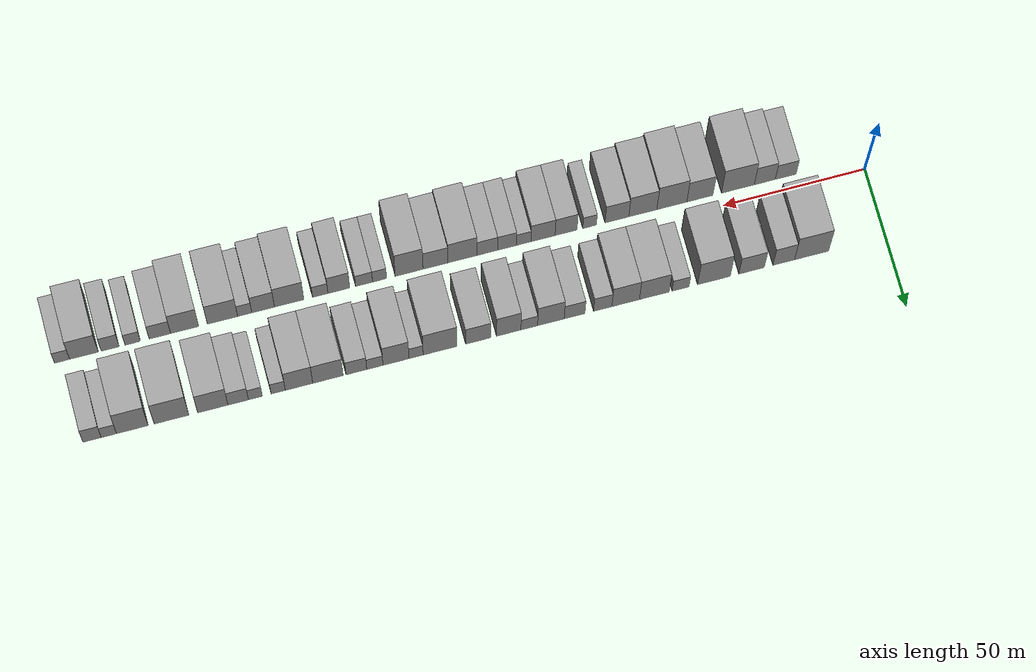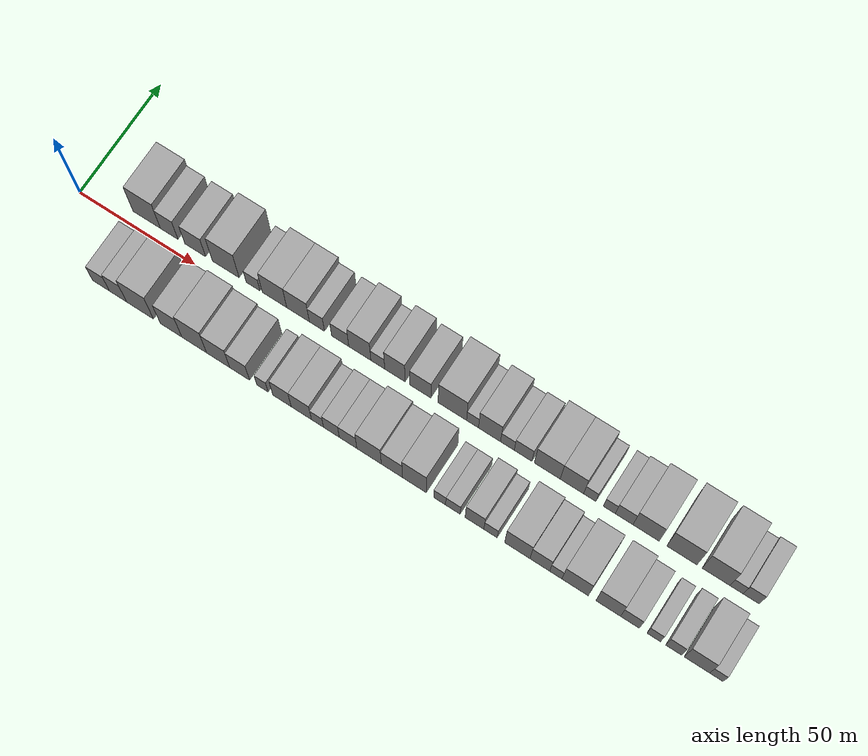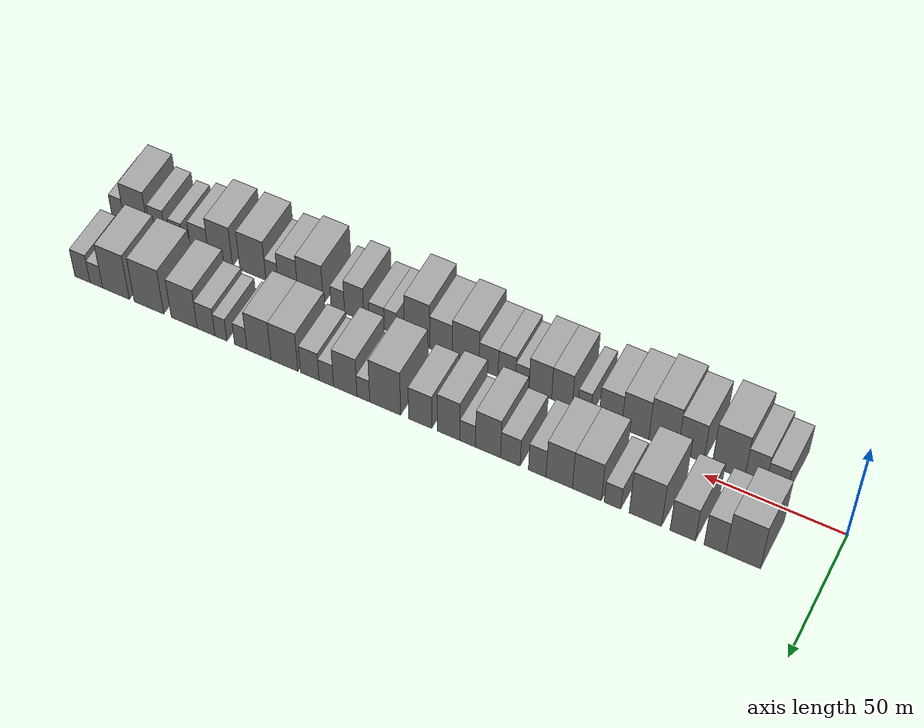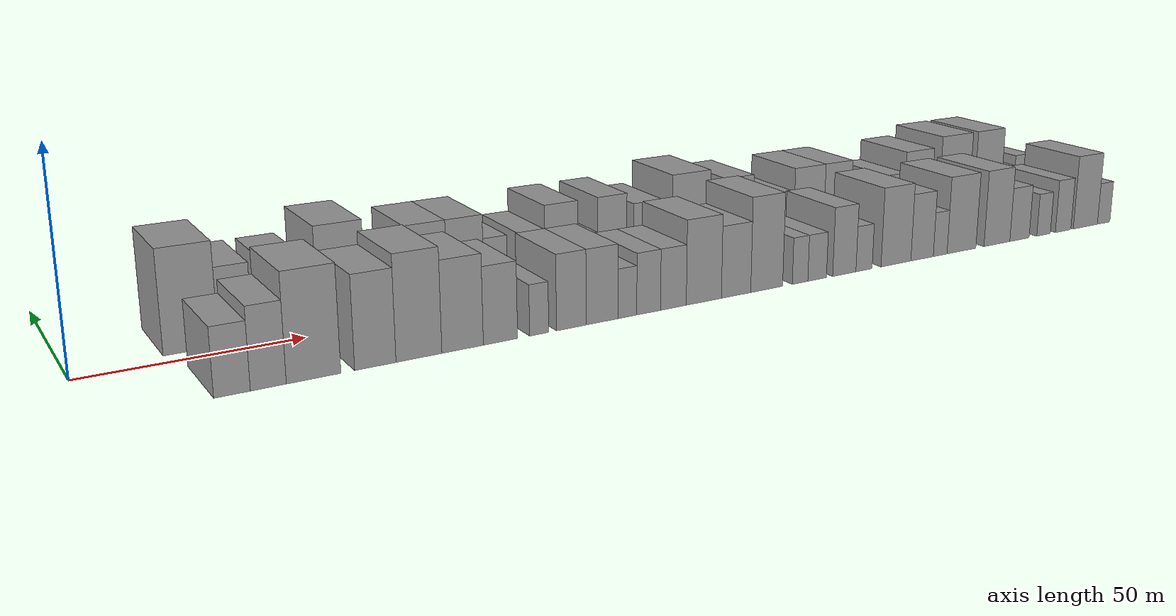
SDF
<sdf version="1.6">
 <world name="default">
  <scene>
   <sky><clouds><speed>12</speed></clouds></sky>
   <ambient>0.4 0.4 0.4 1</ambient>
   <background>0.7 0.7 0.7 1</background>
   <shadows>1</shadows>
  </scene>
  <gravity>0 0 -9.8066</gravity>
  <magnetic_field>6e-06 2.3e-05 -4.2e-05</magnetic_field>
  <physics default="0" name="default_physics" type="ode">
   <ode>
    <solver>
     <type>quick</type>
     <iters>10</iters>
     <sor>1.0</sor>
     <use_dynamic_moi_rescaling>0</use_dynamic_moi_rescaling>
    </solver>
    <constraints>
     <cfm>0</cfm>
     <erp>0.2</erp>
     <contact_max_correcting_vel>100</contact_max_correcting_vel>
     <contact_surface_layer>0.001</contact_surface_layer>
    </constraints>
   </ode>
   <max_step_size>0.004</max_step_size>
   <real_time_factor>1</real_time_factor>
   <real_time_update_rate>250</real_time_update_rate>
  </physics>
  <light name="sun" type="directional">
   <pose>0 0 10 0 0 0</pose>
   <diffuse>0.8 0.8 0.8 1</diffuse>
   <specular>0.2 0.2 0.2 1</specular>
   <attenuation>
    <range>1000</range>
    <constant>0.9</constant>
    <linear>0.01</linear>
    <quadratic>0.001</quadratic>
   </attenuation>
   <direction>-0.5 0.1 -0.9</direction>
  </light>
  <model name="building_1">
   <static>1</static>
   <pose>25.9845 14.5000 0 0.000000 0.000000 1.570796</pose>
   <link name="link">
    <pose>0 0 12.00 0 0 0</pose>
    <collision name="collision"><geometry><box><size>20.0000 11.9689 24.0000</size></box></geometry></collision>
    <visual name="visual">
     <cast_shadows>0</cast_shadows>
     <geometry><box><size>20.0000 11.9689 24.0000</size></box></geometry>
     <material>
      <script>
       <uri>model://grey_wall/materials/scripts</uri>
       <uri>model://grey_wall/materials/textures</uri>
       <name>vrc/grey_wall</name>
      </script>
     </material>
    </visual>
   </link>
  </model>
  <model name="building_2">
   <static>1</static>
   <pose>35.7692 14.5000 0 0.000000 0.000000 1.570796</pose>
   <link name="link">
    <pose>0 0 9.00 0 0 0</pose>
    <collision name="collision"><geometry><box><size>20.0000 7.6005 18.0000</size></box></geometry></collision>
    <visual name="visual">
     <cast_shadows>0</cast_shadows>
     <geometry><box><size>20.0000 7.6005 18.0000</size></box></geometry>
     <material>
      <script>
       <uri>model://grey_wall/materials/scripts</uri>
       <uri>model://grey_wall/materials/textures</uri>
       <name>vrc/grey_wall</name>
      </script>
     </material>
    </visual>
   </link>
  </model>
  <model name="building_3">
   <static>1</static>
   <pose>47.0475 14.5000 0 0.000000 0.000000 1.570796</pose>
   <link name="link">
    <pose>0 0 9.00 0 0 0</pose>
    <collision name="collision"><geometry><box><size>20.0000 8.9561 18.0000</size></box></geometry></collision>
    <visual name="visual">
     <cast_shadows>0</cast_shadows>
     <geometry><box><size>20.0000 8.9561 18.0000</size></box></geometry>
     <material>
      <script>
       <uri>model://grey_wall/materials/scripts</uri>
       <uri>model://grey_wall/materials/textures</uri>
       <name>vrc/grey_wall</name>
      </script>
     </material>
    </visual>
   </link>
  </model>
  <model name="building_4">
   <static>1</static>
   <pose>60.2503 14.5000 0 0.000000 0.000000 1.570796</pose>
   <link name="link">
    <pose>0 0 12.00 0 0 0</pose>
    <collision name="collision"><geometry><box><size>20.0000 11.4495 24.0000</size></box></geometry></collision>
    <visual name="visual">
     <cast_shadows>0</cast_shadows>
     <geometry><box><size>20.0000 11.4495 24.0000</size></box></geometry>
     <material>
      <script>
       <uri>model://grey_wall/materials/scripts</uri>
       <uri>model://grey_wall/materials/textures</uri>
       <name>vrc/grey_wall</name>
      </script>
     </material>
    </visual>
   </link>
  </model>
  <model name="building_5">
   <static>1</static>
   <pose>71.9448 14.5000 0 0.000000 0.000000 1.570796</pose>
   <link name="link">
    <pose>0 0 6.00 0 0 0</pose>
    <collision name="collision"><geometry><box><size>20.0000 5.9396 12.0000</size></box></geometry></collision>
    <visual name="visual">
     <cast_shadows>0</cast_shadows>
     <geometry><box><size>20.0000 5.9396 12.0000</size></box></geometry>
     <material>
      <script>
       <uri>model://grey_wall/materials/scripts</uri>
       <uri>model://grey_wall/materials/textures</uri>
       <name>vrc/grey_wall</name>
      </script>
     </material>
    </visual>
   </link>
  </model>
  <model name="building_6">
   <static>1</static>
   <pose>81.1203 14.5000 0 0.000000 0.000000 1.570796</pose>
   <link name="link">
    <pose>0 0 10.50 0 0 0</pose>
    <collision name="collision"><geometry><box><size>20.0000 10.4114 21.0000</size></box></geometry></collision>
    <visual name="visual">
     <cast_shadows>0</cast_shadows>
     <geometry><box><size>20.0000 10.4114 21.0000</size></box></geometry>
     <material>
      <script>
       <uri>model://grey_wall/materials/scripts</uri>
       <uri>model://grey_wall/materials/textures</uri>
       <name>vrc/grey_wall</name>
      </script>
     </material>
    </visual>
   </link>
  </model>
  <model name="building_7">
   <static>1</static>
   <pose>91.1336 14.5000 0 0.000000 0.000000 1.570796</pose>
   <link name="link">
    <pose>0 0 10.50 0 0 0</pose>
    <collision name="collision"><geometry><box><size>20.0000 9.6151 21.0000</size></box></geometry></collision>
    <visual name="visual">
     <cast_shadows>0</cast_shadows>
     <geometry><box><size>20.0000 9.6151 21.0000</size></box></geometry>
     <material>
      <script>
       <uri>model://grey_wall/materials/scripts</uri>
       <uri>model://grey_wall/materials/textures</uri>
       <name>vrc/grey_wall</name>
      </script>
     </material>
    </visual>
   </link>
  </model>
  <model name="building_8">
   <static>1</static>
   <pose>99.1295 14.5000 0 0.000000 0.000000 1.570796</pose>
   <link name="link">
    <pose>0 0 7.50 0 0 0</pose>
    <collision name="collision"><geometry><box><size>20.0000 6.3768 15.0000</size></box></geometry></collision>
    <visual name="visual">
     <cast_shadows>0</cast_shadows>
     <geometry><box><size>20.0000 6.3768 15.0000</size></box></geometry>
     <material>
      <script>
       <uri>model://grey_wall/materials/scripts</uri>
       <uri>model://grey_wall/materials/textures</uri>
       <name>vrc/grey_wall</name>
      </script>
     </material>
    </visual>
   </link>
  </model>
  <model name="building_9">
   <static>1</static>
   <pose>108.9387 14.5000 0 0.000000 0.000000 1.570796</pose>
   <link name="link">
    <pose>0 0 7.50 0 0 0</pose>
    <collision name="collision"><geometry><box><size>20.0000 7.2416 15.0000</size></box></geometry></collision>
    <visual name="visual">
     <cast_shadows>0</cast_shadows>
     <geometry><box><size>20.0000 7.2416 15.0000</size></box></geometry>
     <material>
      <script>
       <uri>model://grey_wall/materials/scripts</uri>
       <uri>model://grey_wall/materials/textures</uri>
       <name>vrc/grey_wall</name>
      </script>
     </material>
    </visual>
   </link>
  </model>
  <model name="building_10">
   <static>1</static>
   <pose>117.1873 14.5000 0 0.000000 0.000000 1.570796</pose>
   <link name="link">
    <pose>0 0 10.50 0 0 0</pose>
    <collision name="collision"><geometry><box><size>20.0000 9.2556 21.0000</size></box></geometry></collision>
    <visual name="visual">
     <cast_shadows>0</cast_shadows>
     <geometry><box><size>20.0000 9.2556 21.0000</size></box></geometry>
     <material>
      <script>
       <uri>model://grey_wall/materials/scripts</uri>
       <uri>model://grey_wall/materials/textures</uri>
       <name>vrc/grey_wall</name>
      </script>
     </material>
    </visual>
   </link>
  </model>
  <model name="building_11">
   <static>1</static>
   <pose>124.7152 14.5000 0 0.000000 0.000000 1.570796</pose>
   <link name="link">
    <pose>0 0 6.00 0 0 0</pose>
    <collision name="collision"><geometry><box><size>20.0000 5.8002 12.0000</size></box></geometry></collision>
    <visual name="visual">
     <cast_shadows>0</cast_shadows>
     <geometry><box><size>20.0000 5.8002 12.0000</size></box></geometry>
     <material>
      <script>
       <uri>model://grey_wall/materials/scripts</uri>
       <uri>model://grey_wall/materials/textures</uri>
       <name>vrc/grey_wall</name>
      </script>
     </material>
    </visual>
   </link>
  </model>
  <model name="building_12">
   <static>1</static>
   <pose>131.8481 14.5000 0 0.000000 0.000000 1.570796</pose>
   <link name="link">
    <pose>0 0 10.50 0 0 0</pose>
    <collision name="collision"><geometry><box><size>20.0000 8.4658 21.0000</size></box></geometry></collision>
    <visual name="visual">
     <cast_shadows>0</cast_shadows>
     <geometry><box><size>20.0000 8.4658 21.0000</size></box></geometry>
     <material>
      <script>
       <uri>model://grey_wall/materials/scripts</uri>
       <uri>model://grey_wall/materials/textures</uri>
       <name>vrc/grey_wall</name>
      </script>
     </material>
    </visual>
   </link>
  </model>
  <model name="building_13">
   <static>1</static>
   <pose>142.4373 14.5000 0 0.000000 0.000000 1.570796</pose>
   <link name="link">
    <pose>0 0 9.00 0 0 0</pose>
    <collision name="collision"><geometry><box><size>20.0000 8.7125 18.0000</size></box></geometry></collision>
    <visual name="visual">
     <cast_shadows>0</cast_shadows>
     <geometry><box><size>20.0000 8.7125 18.0000</size></box></geometry>
     <material>
      <script>
       <uri>model://grey_wall/materials/scripts</uri>
       <uri>model://grey_wall/materials/textures</uri>
       <name>vrc/grey_wall</name>
      </script>
     </material>
    </visual>
   </link>
  </model>
  <model name="building_14">
   <static>1</static>
   <pose>155.6550 14.5000 0 0.000000 0.000000 1.570796</pose>
   <link name="link">
    <pose>0 0 12.00 0 0 0</pose>
    <collision name="collision"><geometry><box><size>20.0000 11.7228 24.0000</size></box></geometry></collision>
    <visual name="visual">
     <cast_shadows>0</cast_shadows>
     <geometry><box><size>20.0000 11.7228 24.0000</size></box></geometry>
     <material>
      <script>
       <uri>model://grey_wall/materials/scripts</uri>
       <uri>model://grey_wall/materials/textures</uri>
       <name>vrc/grey_wall</name>
      </script>
     </material>
    </visual>
   </link>
  </model>
  <model name="building_15">
   <static>1</static>
   <pose>163.9676 14.5000 0 0.000000 0.000000 1.570796</pose>
   <link name="link">
    <pose>0 0 6.00 0 0 0</pose>
    <collision name="collision"><geometry><box><size>20.0000 4.9025 12.0000</size></box></geometry></collision>
    <visual name="visual">
     <cast_shadows>0</cast_shadows>
     <geometry><box><size>20.0000 4.9025 12.0000</size></box></geometry>
     <material>
      <script>
       <uri>model://grey_wall/materials/scripts</uri>
       <uri>model://grey_wall/materials/textures</uri>
       <name>vrc/grey_wall</name>
      </script>
     </material>
    </visual>
   </link>
  </model>
  <model name="building_16">
   <static>1</static>
   <pose>170.9178 14.5000 0 0.000000 0.000000 1.570796</pose>
   <link name="link">
    <pose>0 0 10.50 0 0 0</pose>
    <collision name="collision"><geometry><box><size>20.0000 8.9979 21.0000</size></box></geometry></collision>
    <visual name="visual">
     <cast_shadows>0</cast_shadows>
     <geometry><box><size>20.0000 8.9979 21.0000</size></box></geometry>
     <material>
      <script>
       <uri>model://grey_wall/materials/scripts</uri>
       <uri>model://grey_wall/materials/textures</uri>
       <name>vrc/grey_wall</name>
      </script>
     </material>
    </visual>
   </link>
  </model>
  <model name="building_17">
   <static>1</static>
   <pose>178.2170 14.5000 0 0.000000 0.000000 1.570796</pose>
   <link name="link">
    <pose>0 0 6.00 0 0 0</pose>
    <collision name="collision"><geometry><box><size>20.0000 5.6005 12.0000</size></box></geometry></collision>
    <visual name="visual">
     <cast_shadows>0</cast_shadows>
     <geometry><box><size>20.0000 5.6005 12.0000</size></box></geometry>
     <material>
      <script>
       <uri>model://grey_wall/materials/scripts</uri>
       <uri>model://grey_wall/materials/textures</uri>
       <name>vrc/grey_wall</name>
      </script>
     </material>
    </visual>
   </link>
  </model>
  <model name="building_18">
   <static>1</static>
   <pose>184.6122 14.5000 0 0.000000 0.000000 1.570796</pose>
   <link name="link">
    <pose>0 0 7.50 0 0 0</pose>
    <collision name="collision"><geometry><box><size>20.0000 7.1898 15.0000</size></box></geometry></collision>
    <visual name="visual">
     <cast_shadows>0</cast_shadows>
     <geometry><box><size>20.0000 7.1898 15.0000</size></box></geometry>
     <material>
      <script>
       <uri>model://grey_wall/materials/scripts</uri>
       <uri>model://grey_wall/materials/textures</uri>
       <name>vrc/grey_wall</name>
      </script>
     </material>
    </visual>
   </link>
  </model>
  <model name="building_19">
   <static>1</static>
   <pose>194.4474 14.5000 0 0.000000 0.000000 1.570796</pose>
   <link name="link">
    <pose>0 0 10.50 0 0 0</pose>
    <collision name="collision"><geometry><box><size>20.0000 10.4807 21.0000</size></box></geometry></collision>
    <visual name="visual">
     <cast_shadows>0</cast_shadows>
     <geometry><box><size>20.0000 10.4807 21.0000</size></box></geometry>
     <material>
      <script>
       <uri>model://grey_wall/materials/scripts</uri>
       <uri>model://grey_wall/materials/textures</uri>
       <name>vrc/grey_wall</name>
      </script>
     </material>
    </visual>
   </link>
  </model>
  <model name="building_20">
   <static>1</static>
   <pose>204.4156 14.5000 0 0.000000 0.000000 1.570796</pose>
   <link name="link">
    <pose>0 0 10.50 0 0 0</pose>
    <collision name="collision"><geometry><box><size>20.0000 9.4557 21.0000</size></box></geometry></collision>
    <visual name="visual">
     <cast_shadows>0</cast_shadows>
     <geometry><box><size>20.0000 9.4557 21.0000</size></box></geometry>
     <material>
      <script>
       <uri>model://grey_wall/materials/scripts</uri>
       <uri>model://grey_wall/materials/textures</uri>
       <name>vrc/grey_wall</name>
      </script>
     </material>
    </visual>
   </link>
  </model>
  <model name="building_21">
   <static>1</static>
   <pose>211.5923 14.5000 0 0.000000 0.000000 1.570796</pose>
   <link name="link">
    <pose>0 0 6.00 0 0 0</pose>
    <collision name="collision"><geometry><box><size>20.0000 4.8976 12.0000</size></box></geometry></collision>
    <visual name="visual">
     <cast_shadows>0</cast_shadows>
     <geometry><box><size>20.0000 4.8976 12.0000</size></box></geometry>
     <material>
      <script>
       <uri>model://grey_wall/materials/scripts</uri>
       <uri>model://grey_wall/materials/textures</uri>
       <name>vrc/grey_wall</name>
      </script>
     </material>
    </visual>
   </link>
  </model>
  <model name="building_22">
   <static>1</static>
   <pose>219.4458 14.5000 0 0.000000 0.000000 1.570796</pose>
   <link name="link">
    <pose>0 0 6.00 0 0 0</pose>
    <collision name="collision"><geometry><box><size>20.0000 4.8096 12.0000</size></box></geometry></collision>
    <visual name="visual">
     <cast_shadows>0</cast_shadows>
     <geometry><box><size>20.0000 4.8096 12.0000</size></box></geometry>
     <material>
      <script>
       <uri>model://grey_wall/materials/scripts</uri>
       <uri>model://grey_wall/materials/textures</uri>
       <name>vrc/grey_wall</name>
      </script>
     </material>
    </visual>
   </link>
  </model>
  <model name="building_23">
   <static>1</static>
   <pose>225.3727 14.5000 0 0.000000 0.000000 1.570796</pose>
   <link name="link">
    <pose>0 0 7.50 0 0 0</pose>
    <collision name="collision"><geometry><box><size>20.0000 7.0442 15.0000</size></box></geometry></collision>
    <visual name="visual">
     <cast_shadows>0</cast_shadows>
     <geometry><box><size>20.0000 7.0442 15.0000</size></box></geometry>
     <material>
      <script>
       <uri>model://grey_wall/materials/scripts</uri>
       <uri>model://grey_wall/materials/textures</uri>
       <name>vrc/grey_wall</name>
      </script>
     </material>
    </visual>
   </link>
  </model>
  <model name="building_24">
   <static>1</static>
   <pose>234.1140 14.5000 0 0.000000 0.000000 1.570796</pose>
   <link name="link">
    <pose>0 0 10.50 0 0 0</pose>
    <collision name="collision"><geometry><box><size>20.0000 10.4384 21.0000</size></box></geometry></collision>
    <visual name="visual">
     <cast_shadows>0</cast_shadows>
     <geometry><box><size>20.0000 10.4384 21.0000</size></box></geometry>
     <material>
      <script>
       <uri>model://grey_wall/materials/scripts</uri>
       <uri>model://grey_wall/materials/textures</uri>
       <name>vrc/grey_wall</name>
      </script>
     </material>
    </visual>
   </link>
  </model>
  <model name="building_25">
   <static>1</static>
   <pose>248.3089 14.5000 0 0.000000 0.000000 1.570796</pose>
   <link name="link">
    <pose>0 0 12.00 0 0 0</pose>
    <collision name="collision"><geometry><box><size>20.0000 11.9514 24.0000</size></box></geometry></collision>
    <visual name="visual">
     <cast_shadows>0</cast_shadows>
     <geometry><box><size>20.0000 11.9514 24.0000</size></box></geometry>
     <material>
      <script>
       <uri>model://grey_wall/materials/scripts</uri>
       <uri>model://grey_wall/materials/textures</uri>
       <name>vrc/grey_wall</name>
      </script>
     </material>
    </visual>
   </link>
  </model>
  <model name="building_26">
   <static>1</static>
   <pose>261.7232 14.5000 0 0.000000 0.000000 1.570796</pose>
   <link name="link">
    <pose>0 0 12.00 0 0 0</pose>
    <collision name="collision"><geometry><box><size>20.0000 10.8771 24.0000</size></box></geometry></collision>
    <visual name="visual">
     <cast_shadows>0</cast_shadows>
     <geometry><box><size>20.0000 10.8771 24.0000</size></box></geometry>
     <material>
      <script>
       <uri>model://grey_wall/materials/scripts</uri>
       <uri>model://grey_wall/materials/textures</uri>
       <name>vrc/grey_wall</name>
      </script>
     </material>
    </visual>
   </link>
  </model>
  <model name="building_27">
   <static>1</static>
   <pose>269.7710 14.5000 0 0.000000 0.000000 1.570796</pose>
   <link name="link">
    <pose>0 0 6.00 0 0 0</pose>
    <collision name="collision"><geometry><box><size>20.0000 5.2185 12.0000</size></box></geometry></collision>
    <visual name="visual">
     <cast_shadows>0</cast_shadows>
     <geometry><box><size>20.0000 5.2185 12.0000</size></box></geometry>
     <material>
      <script>
       <uri>model://grey_wall/materials/scripts</uri>
       <uri>model://grey_wall/materials/textures</uri>
       <name>vrc/grey_wall</name>
      </script>
     </material>
    </visual>
   </link>
  </model>
  <model name="building_28">
   <static>1</static>
   <pose>275.4956 14.5000 0 0.000000 0.000000 1.570796</pose>
   <link name="link">
    <pose>0 0 7.50 0 0 0</pose>
    <collision name="collision"><geometry><box><size>20.0000 6.2307 15.0000</size></box></geometry></collision>
    <visual name="visual">
     <cast_shadows>0</cast_shadows>
     <geometry><box><size>20.0000 6.2307 15.0000</size></box></geometry>
     <material>
      <script>
       <uri>model://grey_wall/materials/scripts</uri>
       <uri>model://grey_wall/materials/textures</uri>
       <name>vrc/grey_wall</name>
      </script>
     </material>
    </visual>
   </link>
  </model>
  <model name="building_29">
   <static>1</static>
   <pose>26.6899 -14.5000 0 0.000000 0.000000 1.570796</pose>
   <link name="link">
    <pose>0 0 7.50 0 0 0</pose>
    <collision name="collision"><geometry><box><size>20.0000 7.3798 15.0000</size></box></geometry></collision>
    <visual name="visual">
     <cast_shadows>0</cast_shadows>
     <geometry><box><size>20.0000 7.3798 15.0000</size></box></geometry>
     <material>
      <script>
       <uri>model://grey_wall/materials/scripts</uri>
       <uri>model://grey_wall/materials/textures</uri>
       <name>vrc/grey_wall</name>
      </script>
     </material>
    </visual>
   </link>
  </model>
  <model name="building_30">
   <static>1</static>
   <pose>34.0803 -14.5000 0 0.000000 0.000000 1.570796</pose>
   <link name="link">
    <pose>0 0 9.00 0 0 0</pose>
    <collision name="collision"><geometry><box><size>20.0000 7.4009 18.0000</size></box></geometry></collision>
    <visual name="visual">
     <cast_shadows>0</cast_shadows>
     <geometry><box><size>20.0000 7.4009 18.0000</size></box></geometry>
     <material>
      <script>
       <uri>model://grey_wall/materials/scripts</uri>
       <uri>model://grey_wall/materials/textures</uri>
       <name>vrc/grey_wall</name>
      </script>
     </material>
    </visual>
   </link>
  </model>
  <model name="building_31">
   <static>1</static>
   <pose>43.5762 -14.5000 0 0.000000 0.000000 1.570796</pose>
   <link name="link">
    <pose>0 0 12.00 0 0 0</pose>
    <collision name="collision"><geometry><box><size>20.0000 11.5909 24.0000</size></box></geometry></collision>
    <visual name="visual">
     <cast_shadows>0</cast_shadows>
     <geometry><box><size>20.0000 11.5909 24.0000</size></box></geometry>
     <material>
      <script>
       <uri>model://grey_wall/materials/scripts</uri>
       <uri>model://grey_wall/materials/textures</uri>
       <name>vrc/grey_wall</name>
      </script>
     </material>
    </visual>
   </link>
  </model>
  <model name="building_32">
   <static>1</static>
   <pose>56.9744 -14.5000 0 0.000000 0.000000 1.570796</pose>
   <link name="link">
    <pose>0 0 10.50 0 0 0</pose>
    <collision name="collision"><geometry><box><size>20.0000 9.2055 21.0000</size></box></geometry></collision>
    <visual name="visual">
     <cast_shadows>0</cast_shadows>
     <geometry><box><size>20.0000 9.2055 21.0000</size></box></geometry>
     <material>
      <script>
       <uri>model://grey_wall/materials/scripts</uri>
       <uri>model://grey_wall/materials/textures</uri>
       <name>vrc/grey_wall</name>
      </script>
     </material>
    </visual>
   </link>
  </model>
  <model name="building_33">
   <static>1</static>
   <pose>66.8520 -14.5000 0 0.000000 0.000000 1.570796</pose>
   <link name="link">
    <pose>0 0 12.00 0 0 0</pose>
    <collision name="collision"><geometry><box><size>20.0000 10.5497 24.0000</size></box></geometry></collision>
    <visual name="visual">
     <cast_shadows>0</cast_shadows>
     <geometry><box><size>20.0000 10.5497 24.0000</size></box></geometry>
     <material>
      <script>
       <uri>model://grey_wall/materials/scripts</uri>
       <uri>model://grey_wall/materials/textures</uri>
       <name>vrc/grey_wall</name>
      </script>
     </material>
    </visual>
   </link>
  </model>
  <model name="building_34">
   <static>1</static>
   <pose>77.0535 -14.5000 0 0.000000 0.000000 1.570796</pose>
   <link name="link">
    <pose>0 0 10.50 0 0 0</pose>
    <collision name="collision"><geometry><box><size>20.0000 9.8534 21.0000</size></box></geometry></collision>
    <visual name="visual">
     <cast_shadows>0</cast_shadows>
     <geometry><box><size>20.0000 9.8534 21.0000</size></box></geometry>
     <material>
      <script>
       <uri>model://grey_wall/materials/scripts</uri>
       <uri>model://grey_wall/materials/textures</uri>
       <name>vrc/grey_wall</name>
      </script>
     </material>
    </visual>
   </link>
  </model>
  <model name="building_35">
   <static>1</static>
   <pose>86.1651 -14.5000 0 0.000000 0.000000 1.570796</pose>
   <link name="link">
    <pose>0 0 9.00 0 0 0</pose>
    <collision name="collision"><geometry><box><size>20.0000 8.3698 18.0000</size></box></geometry></collision>
    <visual name="visual">
     <cast_shadows>0</cast_shadows>
     <geometry><box><size>20.0000 8.3698 18.0000</size></box></geometry>
     <material>
      <script>
       <uri>model://grey_wall/materials/scripts</uri>
       <uri>model://grey_wall/materials/textures</uri>
       <name>vrc/grey_wall</name>
      </script>
     </material>
    </visual>
   </link>
  </model>
  <model name="building_36">
   <static>1</static>
   <pose>95.7519 -14.5000 0 0.000000 0.000000 1.570796</pose>
   <link name="link">
    <pose>0 0 6.00 0 0 0</pose>
    <collision name="collision"><geometry><box><size>20.0000 4.8037 12.0000</size></box></geometry></collision>
    <visual name="visual">
     <cast_shadows>0</cast_shadows>
     <geometry><box><size>20.0000 4.8037 12.0000</size></box></geometry>
     <material>
      <script>
       <uri>model://grey_wall/materials/scripts</uri>
       <uri>model://grey_wall/materials/textures</uri>
       <name>vrc/grey_wall</name>
      </script>
     </material>
    </visual>
   </link>
  </model>
  <model name="building_37">
   <static>1</static>
   <pose>104.0038 -14.5000 0 0.000000 0.000000 1.570796</pose>
   <link name="link">
    <pose>0 0 9.00 0 0 0</pose>
    <collision name="collision"><geometry><box><size>20.0000 7.7002 18.0000</size></box></geometry></collision>
    <visual name="visual">
     <cast_shadows>0</cast_shadows>
     <geometry><box><size>20.0000 7.7002 18.0000</size></box></geometry>
     <material>
      <script>
       <uri>model://grey_wall/materials/scripts</uri>
       <uri>model://grey_wall/materials/textures</uri>
       <name>vrc/grey_wall</name>
      </script>
     </material>
    </visual>
   </link>
  </model>
  <model name="building_38">
   <static>1</static>
   <pose>112.0795 -14.5000 0 0.000000 0.000000 1.570796</pose>
   <link name="link">
    <pose>0 0 9.00 0 0 0</pose>
    <collision name="collision"><geometry><box><size>20.0000 8.4512 18.0000</size></box></geometry></collision>
    <visual name="visual">
     <cast_shadows>0</cast_shadows>
     <geometry><box><size>20.0000 8.4512 18.0000</size></box></geometry>
     <material>
      <script>
       <uri>model://grey_wall/materials/scripts</uri>
       <uri>model://grey_wall/materials/textures</uri>
       <name>vrc/grey_wall</name>
      </script>
     </material>
    </visual>
   </link>
  </model>
  <model name="building_39">
   <static>1</static>
   <pose>118.8293 -14.5000 0 0.000000 0.000000 1.570796</pose>
   <link name="link">
    <pose>0 0 6.00 0 0 0</pose>
    <collision name="collision"><geometry><box><size>20.0000 5.0483 12.0000</size></box></geometry></collision>
    <visual name="visual">
     <cast_shadows>0</cast_shadows>
     <geometry><box><size>20.0000 5.0483 12.0000</size></box></geometry>
     <material>
      <script>
       <uri>model://grey_wall/materials/scripts</uri>
       <uri>model://grey_wall/materials/textures</uri>
       <name>vrc/grey_wall</name>
      </script>
     </material>
    </visual>
   </link>
  </model>
  <model name="building_40">
   <static>1</static>
   <pose>124.6344 -14.5000 0 0.000000 0.000000 1.570796</pose>
   <link name="link">
    <pose>0 0 7.50 0 0 0</pose>
    <collision name="collision"><geometry><box><size>20.0000 6.5619 15.0000</size></box></geometry></collision>
    <visual name="visual">
     <cast_shadows>0</cast_shadows>
     <geometry><box><size>20.0000 6.5619 15.0000</size></box></geometry>
     <material>
      <script>
       <uri>model://grey_wall/materials/scripts</uri>
       <uri>model://grey_wall/materials/textures</uri>
       <name>vrc/grey_wall</name>
      </script>
     </material>
    </visual>
   </link>
  </model>
  <model name="building_41">
   <static>1</static>
   <pose>131.5280 -14.5000 0 0.000000 0.000000 1.570796</pose>
   <link name="link">
    <pose>0 0 7.50 0 0 0</pose>
    <collision name="collision"><geometry><box><size>20.0000 7.2253 15.0000</size></box></geometry></collision>
    <visual name="visual">
     <cast_shadows>0</cast_shadows>
     <geometry><box><size>20.0000 7.2253 15.0000</size></box></geometry>
     <material>
      <script>
       <uri>model://grey_wall/materials/scripts</uri>
       <uri>model://grey_wall/materials/textures</uri>
       <name>vrc/grey_wall</name>
      </script>
     </material>
    </visual>
   </link>
  </model>
  <model name="building_42">
   <static>1</static>
   <pose>140.2007 -14.5000 0 0.000000 0.000000 1.570796</pose>
   <link name="link">
    <pose>0 0 10.50 0 0 0</pose>
    <collision name="collision"><geometry><box><size>20.0000 10.1203 21.0000</size></box></geometry></collision>
    <visual name="visual">
     <cast_shadows>0</cast_shadows>
     <geometry><box><size>20.0000 10.1203 21.0000</size></box></geometry>
     <material>
      <script>
       <uri>model://grey_wall/materials/scripts</uri>
       <uri>model://grey_wall/materials/textures</uri>
       <name>vrc/grey_wall</name>
      </script>
     </material>
    </visual>
   </link>
  </model>
  <model name="building_43">
   <static>1</static>
   <pose>149.6101 -14.5000 0 0.000000 0.000000 1.570796</pose>
   <link name="link">
    <pose>0 0 9.00 0 0 0</pose>
    <collision name="collision"><geometry><box><size>20.0000 8.6985 18.0000</size></box></geometry></collision>
    <visual name="visual">
     <cast_shadows>0</cast_shadows>
     <geometry><box><size>20.0000 8.6985 18.0000</size></box></geometry>
     <material>
      <script>
       <uri>model://grey_wall/materials/scripts</uri>
       <uri>model://grey_wall/materials/textures</uri>
       <name>vrc/grey_wall</name>
      </script>
     </material>
    </visual>
   </link>
  </model>
  <model name="building_44">
   <static>1</static>
   <pose>158.8207 -14.5000 0 0.000000 0.000000 1.570796</pose>
   <link name="link">
    <pose>0 0 12.00 0 0 0</pose>
    <collision name="collision"><geometry><box><size>20.0000 9.7227 24.0000</size></box></geometry></collision>
    <visual name="visual">
     <cast_shadows>0</cast_shadows>
     <geometry><box><size>20.0000 9.7227 24.0000</size></box></geometry>
     <material>
      <script>
       <uri>model://grey_wall/materials/scripts</uri>
       <uri>model://grey_wall/materials/textures</uri>
       <name>vrc/grey_wall</name>
      </script>
     </material>
    </visual>
   </link>
  </model>
  <model name="building_45">
   <static>1</static>
   <pose>169.1161 -14.5000 0 0.000000 0.000000 1.570796</pose>
   <link name="link">
    <pose>0 0 6.00 0 0 0</pose>
    <collision name="collision"><geometry><box><size>20.0000 4.8681 12.0000</size></box></geometry></collision>
    <visual name="visual">
     <cast_shadows>0</cast_shadows>
     <geometry><box><size>20.0000 4.8681 12.0000</size></box></geometry>
     <material>
      <script>
       <uri>model://grey_wall/materials/scripts</uri>
       <uri>model://grey_wall/materials/textures</uri>
       <name>vrc/grey_wall</name>
      </script>
     </material>
    </visual>
   </link>
  </model>
  <model name="building_46">
   <static>1</static>
   <pose>174.5121 -14.5000 0 0.000000 0.000000 1.570796</pose>
   <link name="link">
    <pose>0 0 6.00 0 0 0</pose>
    <collision name="collision"><geometry><box><size>20.0000 5.9239 12.0000</size></box></geometry></collision>
    <visual name="visual">
     <cast_shadows>0</cast_shadows>
     <geometry><box><size>20.0000 5.9239 12.0000</size></box></geometry>
     <material>
      <script>
       <uri>model://grey_wall/materials/scripts</uri>
       <uri>model://grey_wall/materials/textures</uri>
       <name>vrc/grey_wall</name>
      </script>
     </material>
    </visual>
   </link>
  </model>
  <model name="building_47">
   <static>1</static>
   <pose>183.2656 -14.5000 0 0.000000 0.000000 1.570796</pose>
   <link name="link">
    <pose>0 0 9.00 0 0 0</pose>
    <collision name="collision"><geometry><box><size>20.0000 7.5832 18.0000</size></box></geometry></collision>
    <visual name="visual">
     <cast_shadows>0</cast_shadows>
     <geometry><box><size>20.0000 7.5832 18.0000</size></box></geometry>
     <material>
      <script>
       <uri>model://grey_wall/materials/scripts</uri>
       <uri>model://grey_wall/materials/textures</uri>
       <name>vrc/grey_wall</name>
      </script>
     </material>
    </visual>
   </link>
  </model>
  <model name="building_48">
   <static>1</static>
   <pose>189.7431 -14.5000 0 0.000000 0.000000 1.570796</pose>
   <link name="link">
    <pose>0 0 6.00 0 0 0</pose>
    <collision name="collision"><geometry><box><size>20.0000 5.3719 12.0000</size></box></geometry></collision>
    <visual name="visual">
     <cast_shadows>0</cast_shadows>
     <geometry><box><size>20.0000 5.3719 12.0000</size></box></geometry>
     <material>
      <script>
       <uri>model://grey_wall/materials/scripts</uri>
       <uri>model://grey_wall/materials/textures</uri>
       <name>vrc/grey_wall</name>
      </script>
     </material>
    </visual>
   </link>
  </model>
  <model name="building_49">
   <static>1</static>
   <pose>200.5272 -14.5000 0 0.000000 0.000000 1.570796</pose>
   <link name="link">
    <pose>0 0 10.50 0 0 0</pose>
    <collision name="collision"><geometry><box><size>20.0000 10.1963 21.0000</size></box></geometry></collision>
    <visual name="visual">
     <cast_shadows>0</cast_shadows>
     <geometry><box><size>20.0000 10.1963 21.0000</size></box></geometry>
     <material>
      <script>
       <uri>model://grey_wall/materials/scripts</uri>
       <uri>model://grey_wall/materials/textures</uri>
       <name>vrc/grey_wall</name>
      </script>
     </material>
    </visual>
   </link>
  </model>
  <model name="building_50">
   <static>1</static>
   <pose>209.5545 -14.5000 0 0.000000 0.000000 1.570796</pose>
   <link name="link">
    <pose>0 0 9.00 0 0 0</pose>
    <collision name="collision"><geometry><box><size>20.0000 7.8584 18.0000</size></box></geometry></collision>
    <visual name="visual">
     <cast_shadows>0</cast_shadows>
     <geometry><box><size>20.0000 7.8584 18.0000</size></box></geometry>
     <material>
      <script>
       <uri>model://grey_wall/materials/scripts</uri>
       <uri>model://grey_wall/materials/textures</uri>
       <name>vrc/grey_wall</name>
      </script>
     </material>
    </visual>
   </link>
  </model>
  <model name="building_51">
   <static>1</static>
   <pose>215.9348 -14.5000 0 0.000000 0.000000 1.570796</pose>
   <link name="link">
    <pose>0 0 6.00 0 0 0</pose>
    <collision name="collision"><geometry><box><size>20.0000 4.9022 12.0000</size></box></geometry></collision>
    <visual name="visual">
     <cast_shadows>0</cast_shadows>
     <geometry><box><size>20.0000 4.9022 12.0000</size></box></geometry>
     <material>
      <script>
       <uri>model://grey_wall/materials/scripts</uri>
       <uri>model://grey_wall/materials/textures</uri>
       <name>vrc/grey_wall</name>
      </script>
     </material>
    </visual>
   </link>
  </model>
  <model name="building_52">
   <static>1</static>
   <pose>223.6233 -14.5000 0 0.000000 0.000000 1.570796</pose>
   <link name="link">
    <pose>0 0 10.50 0 0 0</pose>
    <collision name="collision"><geometry><box><size>20.0000 10.4747 21.0000</size></box></geometry></collision>
    <visual name="visual">
     <cast_shadows>0</cast_shadows>
     <geometry><box><size>20.0000 10.4747 21.0000</size></box></geometry>
     <material>
      <script>
       <uri>model://grey_wall/materials/scripts</uri>
       <uri>model://grey_wall/materials/textures</uri>
       <name>vrc/grey_wall</name>
      </script>
     </material>
    </visual>
   </link>
  </model>
  <model name="building_53">
   <static>1</static>
   <pose>236.7152 -14.5000 0 0.000000 0.000000 1.570796</pose>
   <link name="link">
    <pose>0 0 10.50 0 0 0</pose>
    <collision name="collision"><geometry><box><size>20.0000 9.7091 21.0000</size></box></geometry></collision>
    <visual name="visual">
     <cast_shadows>0</cast_shadows>
     <geometry><box><size>20.0000 9.7091 21.0000</size></box></geometry>
     <material>
      <script>
       <uri>model://grey_wall/materials/scripts</uri>
       <uri>model://grey_wall/materials/textures</uri>
       <name>vrc/grey_wall</name>
      </script>
     </material>
    </visual>
   </link>
  </model>
  <model name="building_54">
   <static>1</static>
   <pose>245.2711 -14.5000 0 0.000000 0.000000 1.570796</pose>
   <link name="link">
    <pose>0 0 7.50 0 0 0</pose>
    <collision name="collision"><geometry><box><size>20.0000 7.4027 15.0000</size></box></geometry></collision>
    <visual name="visual">
     <cast_shadows>0</cast_shadows>
     <geometry><box><size>20.0000 7.4027 15.0000</size></box></geometry>
     <material>
      <script>
       <uri>model://grey_wall/materials/scripts</uri>
       <uri>model://grey_wall/materials/textures</uri>
       <name>vrc/grey_wall</name>
      </script>
     </material>
    </visual>
   </link>
  </model>
  <model name="building_55">
   <static>1</static>
   <pose>254.6294 -14.5000 0 0.000000 0.000000 1.570796</pose>
   <link name="link">
    <pose>0 0 6.00 0 0 0</pose>
    <collision name="collision"><geometry><box><size>20.0000 5.3138 12.0000</size></box></geometry></collision>
    <visual name="visual">
     <cast_shadows>0</cast_shadows>
     <geometry><box><size>20.0000 5.3138 12.0000</size></box></geometry>
     <material>
      <script>
       <uri>model://grey_wall/materials/scripts</uri>
       <uri>model://grey_wall/materials/textures</uri>
       <name>vrc/grey_wall</name>
      </script>
     </material>
    </visual>
   </link>
  </model>
  <model name="building_56">
   <static>1</static>
   <pose>262.3837 -14.5000 0 0.000000 0.000000 1.570796</pose>
   <link name="link">
    <pose>0 0 7.50 0 0 0</pose>
    <collision name="collision"><geometry><box><size>20.0000 6.1948 15.0000</size></box></geometry></collision>
    <visual name="visual">
     <cast_shadows>0</cast_shadows>
     <geometry><box><size>20.0000 6.1948 15.0000</size></box></geometry>
     <material>
      <script>
       <uri>model://grey_wall/materials/scripts</uri>
       <uri>model://grey_wall/materials/textures</uri>
       <name>vrc/grey_wall</name>
      </script>
     </material>
    </visual>
   </link>
  </model>
  <model name="building_57">
   <static>1</static>
   <pose>271.4275 -14.5000 0 0.000000 0.000000 1.570796</pose>
   <link name="link">
    <pose>0 0 10.50 0 0 0</pose>
    <collision name="collision"><geometry><box><size>20.0000 9.8927 21.0000</size></box></geometry></collision>
    <visual name="visual">
     <cast_shadows>0</cast_shadows>
     <geometry><box><size>20.0000 9.8927 21.0000</size></box></geometry>
     <material>
      <script>
       <uri>model://grey_wall/materials/scripts</uri>
       <uri>model://grey_wall/materials/textures</uri>
       <name>vrc/grey_wall</name>
      </script>
     </material>
    </visual>
   </link>
  </model>
  <model name="building_58">
   <static>1</static>
   <pose>278.9773 -14.5000 0 0.000000 0.000000 1.570796</pose>
   <link name="link">
    <pose>0 0 6.00 0 0 0</pose>
    <collision name="collision"><geometry><box><size>20.0000 5.2070 12.0000</size></box></geometry></collision>
    <visual name="visual">
     <cast_shadows>0</cast_shadows>
     <geometry><box><size>20.0000 5.2070 12.0000</size></box></geometry>
     <material>
      <script>
       <uri>model://grey_wall/materials/scripts</uri>
       <uri>model://grey_wall/materials/textures</uri>
       <name>vrc/grey_wall</name>
      </script>
     </material>
    </visual>
   </link>
  </model>
 </world>
</sdf>
